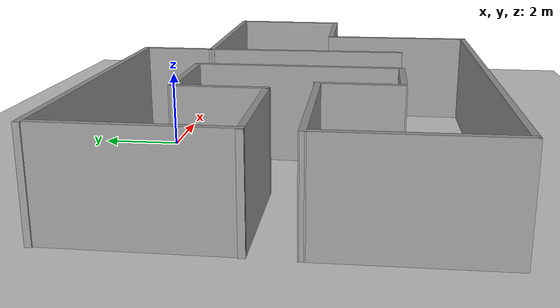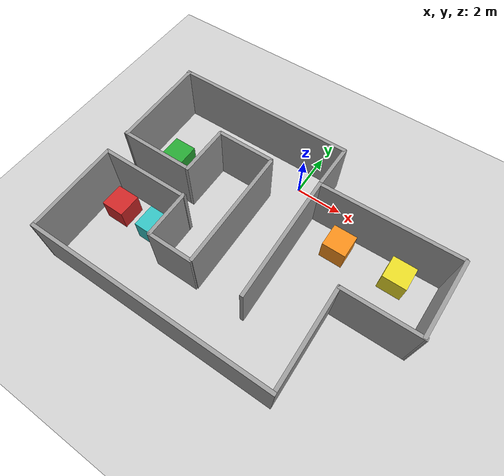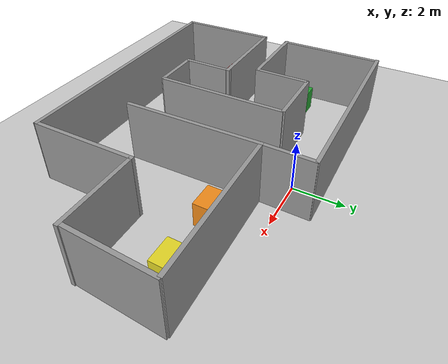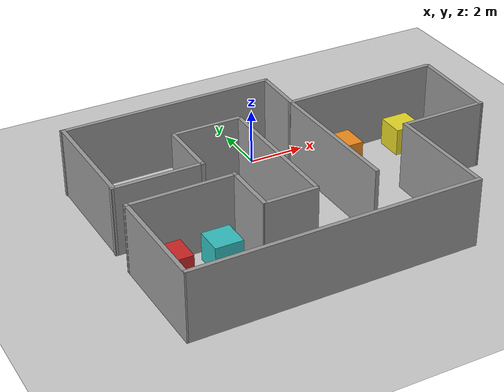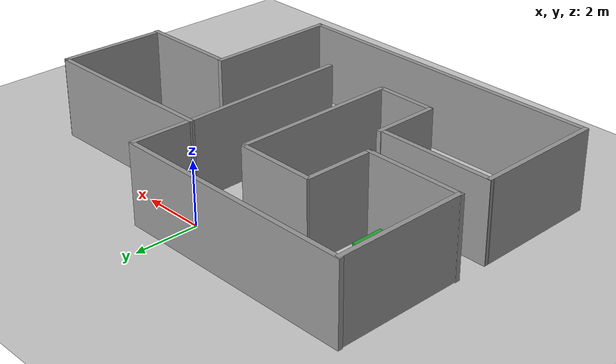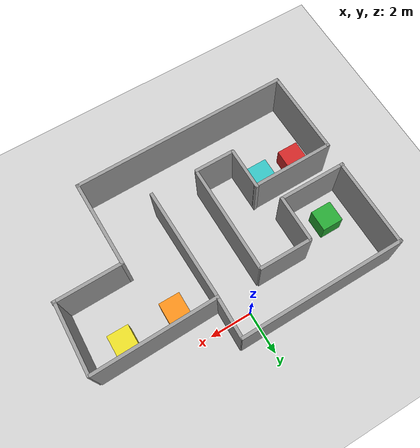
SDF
<sdf version="1.6">
 <world name="default">
  <light name="sun" type="directional">
   <pose>0 0 10 0 -0 0</pose>
   <diffuse>0.8 0.8 0.8 1</diffuse>
   <specular>0.2 0.2 0.2 1</specular>
   <attenuation>
    <range>1000</range>
    <constant>0.9</constant>
    <linear>0.01</linear>
    <quadratic>0.001</quadratic>
   </attenuation>
   <direction>-0.5 0.1 -0.9</direction>
  </light>
  <model name="ground_plane">
   <static>1</static>
   <link name="link">
    <collision name="collision">
     <geometry><plane><normal>0 0 1</normal><size>100 100</size></plane></geometry>
     <surface>
      <contact><collide_bitmask>65535</collide_bitmask></contact>
      <friction><ode><mu>100</mu><mu2>50</mu2></ode></friction>
     </surface>
    </collision>
    <visual name="visual">
     <cast_shadows>0</cast_shadows>
     <geometry><plane><normal>0 0 1</normal><size>100 100</size></plane></geometry>
     <material>
      <script><uri>file://media/materials/scripts/gazebo.material</uri><name>Gazebo/Grey</name></script>
     </material>
    </visual>
   </link>
  </model>
  <gravity>0 0 -9.8</gravity>
  <magnetic_field>6e-06 2.3e-05 -4.2e-05</magnetic_field>
  <atmosphere type="adiabatic"/>
  <physics name="default_physics" default="0" type="ode">
   <max_step_size>0.001</max_step_size>
   <real_time_factor>1</real_time_factor>
   <real_time_update_rate>1000</real_time_update_rate>
  </physics>
  <scene><ambient>0.4 0.4 0.4 1</ambient><background>0.7 0.7 0.7 1</background><shadows>1</shadows></scene>
  <spherical_coordinates>
   <surface_model>EARTH_WGS84</surface_model>
   <latitude_deg>0</latitude_deg>
   <longitude_deg>0</longitude_deg>
   <elevation>0</elevation>
   <heading_deg>0</heading_deg>
  </spherical_coordinates>
  <model name="small_factory">
   <pose>0.167856 -3.55018 0 0 -0 0</pose>
   <link name="Wall_49">
    <collision name="Wall_49_Collision">
     <geometry><box><size>5.42677 0.15 2.5</size></box></geometry>
     <pose>0 0 1.25 0 -0 0</pose>
    </collision>
    <visual name="Wall_49_Visual">
     <pose>0 0 1.25 0 -0 0</pose>
     <geometry><box><size>5.42677 0.15 2.5</size></box></geometry>
     <material>
      <script><uri>file://media/materials/scripts/gazebo.material</uri><name>Gazebo/Grey</name></script>
      <ambient>1 1 1 1</ambient>
     </material>
     <meta><layer>0</layer></meta>
    </visual>
    <pose>1.01352 0.086125 0 0 -0 1.59164</pose>
   </link>
   <link name="Wall_50">
    <collision name="Wall_50_Collision">
     <geometry><box><size>2.026 0.15 2.5</size></box></geometry>
     <pose>0 0 1.25 0 -0 0</pose>
    </collision>
    <visual name="Wall_50_Visual">
     <pose>0 0 1.25 0 -0 0</pose>
     <geometry><box><size>2.026 0.15 2.5</size></box></geometry>
     <material>
      <script><uri>file://media/materials/scripts/gazebo.material</uri><name>Gazebo/Grey</name></script>
      <ambient>1 1 1 1</ambient>
     </material>
     <meta><layer>0</layer></meta>
    </visual>
    <pose>0.969367 3.66152 0 0 -0 1.55926</pose>
   </link>
   <link name="Wall_51">
    <collision name="Wall_51_Collision">
     <geometry><box><size>7.82404 0.15 2.5</size></box></geometry>
     <pose>0 0 1.25 0 -0 0</pose>
    </collision>
    <visual name="Wall_51_Visual">
     <pose>0 0 1.25 0 -0 0</pose>
     <geometry><box><size>7.82404 0.15 2.5</size></box></geometry>
     <material>
      <script><uri>file://media/materials/scripts/gazebo.material</uri><name>Gazebo/Grey</name></script>
      <ambient>1 1 1 1</ambient>
     </material>
     <meta><layer>0</layer></meta>
    </visual>
    <pose>-2.89195 4.61441 0 0 0 -3.13632</pose>
   </link>
   <link name="Wall_52">
    <collision name="Wall_52_Collision">
     <geometry><box><size>4.24698 0.15 2.5</size></box></geometry>
     <pose>0 0 1.25 0 -0 0</pose>
    </collision>
    <visual name="Wall_52_Visual">
     <pose>0 0 1.25 0 -0 0</pose>
     <geometry><box><size>4.24698 0.15 2.5</size></box></geometry>
     <material>
      <script><uri>file://media/materials/scripts/gazebo.material</uri><name>Gazebo/Grey</name></script>
      <ambient>1 1 1 1</ambient>
     </material>
     <meta><layer>0</layer></meta>
    </visual>
    <pose>-6.67186 2.51063 0 0 0 -1.56012</pose>
   </link>
   <link name="Wall_53">
    <collision name="Wall_53_Collision">
     <geometry><box><size>3.25 0.15 2.5</size></box></geometry>
     <pose>0 0 1.25 0 -0 0</pose>
    </collision>
    <visual name="Wall_53_Visual">
     <pose>0 0 1.25 0 -0 0</pose>
     <geometry><box><size>3.25 0.15 2.5</size></box></geometry>
     <material>
      <script><uri>file://media/materials/scripts/gazebo.material</uri><name>Gazebo/Grey</name></script>
      <ambient>1 1 1 1</ambient>
     </material>
     <meta><layer>0</layer></meta>
    </visual>
    <pose>-5.12658 0.462254 0 0 -0 0</pose>
   </link>
   <link name="Wall_56">
    <collision name="Wall_56_Collision">
     <geometry><box><size>2.5 0.15 2.5</size></box></geometry>
     <pose>0 0 1.25 0 -0 0</pose>
    </collision>
    <visual name="Wall_56_Visual">
     <pose>0 0 1.25 0 -0 0</pose>
     <geometry><box><size>2.5 0.15 2.5</size></box></geometry>
     <material>
      <script><uri>file://media/materials/scripts/gazebo.material</uri><name>Gazebo/Grey</name></script>
      <ambient>1 1 1 1</ambient>
     </material>
     <meta><layer>0</layer></meta>
    </visual>
    <pose>-2.36417 2.61026 0 0 -0 0</pose>
   </link>
   <link name="Wall_59">
    <collision name="Wall_59_Collision">
     <geometry><box><size>2.07117 0.15 2.5</size></box></geometry>
     <pose>0 0 1.25 0 -0 0</pose>
    </collision>
    <visual name="Wall_59_Visual">
     <pose>0 0 1.25 0 -0 0</pose>
     <geometry><box><size>2.07117 0.15 2.5</size></box></geometry>
     <material>
      <script><uri>file://media/materials/scripts/gazebo.material</uri><name>Gazebo/Grey</name></script>
      <ambient>1 1 1 1</ambient>
     </material>
     <meta><layer>0</layer></meta>
    </visual>
    <pose>-2.95419 -1.5526 0 0 -0 1.57526</pose>
   </link>
   <link name="Wall_60">
    <collision name="Wall_60_Collision">
     <geometry><box><size>3.8725 0.15 2.5</size></box></geometry>
     <pose>0 0 1.25 0 -0 0</pose>
    </collision>
    <visual name="Wall_60_Visual">
     <pose>0 0 1.25 0 -0 0</pose>
     <geometry><box><size>3.8725 0.15 2.5</size></box></geometry>
     <material>
      <script><uri>file://media/materials/scripts/gazebo.material</uri><name>Gazebo/Grey</name></script>
      <ambient>1 1 1 1</ambient>
     </material>
     <meta><layer>0</layer></meta>
    </visual>
    <pose>-4.81968 -0.63193 0 0 0 -3.13445</pose>
   </link>
   <link name="Wall_61">
    <collision name="Wall_61_Collision">
     <geometry><box><size>4.11251 0.15 2.5</size></box></geometry>
     <pose>0 0 1.25 0 -0 0</pose>
    </collision>
    <visual name="Wall_61_Visual">
     <pose>0 0 1.25 0 -0 0</pose>
     <geometry><box><size>4.11251 0.15 2.5</size></box></geometry>
     <material>
      <script><uri>file://media/materials/scripts/gazebo.material</uri><name>Gazebo/Grey</name></script>
      <ambient>1 1 1 1</ambient>
     </material>
     <meta><layer>0</layer></meta>
    </visual>
    <pose>-6.64358 -2.65273 0 0 0 -1.55197</pose>
   </link>
   <link name="Wall_62">
    <collision name="Wall_62_Collision">
     <geometry><box><size>10.322 0.15 2.5</size></box></geometry>
     <pose>0 0 1.25 0 -0 0</pose>
    </collision>
    <visual name="Wall_62_Visual">
     <pose>0 0 1.25 0 -0 0</pose>
     <geometry><box><size>10.322 0.15 2.5</size></box></geometry>
     <material>
      <script><uri>file://media/materials/scripts/gazebo.material</uri><name>Gazebo/Grey</name></script>
      <ambient>1 1 1 1</ambient>
     </material>
     <meta><layer>0</layer></meta>
    </visual>
    <pose>-1.49396 -4.59846 0 0 -0 0.006917</pose>
   </link>
   <link name="Wall_63">
    <collision name="Wall_63_Collision">
     <geometry><box><size>4.17596 0.15 2.5</size></box></geometry>
     <pose>0 0 1.25 0 -0 0</pose>
    </collision>
    <visual name="Wall_63_Visual">
     <pose>0 0 1.25 0 -0 0</pose>
     <geometry><box><size>4.17596 0.15 2.5</size></box></geometry>
     <material>
      <script><uri>file://media/materials/scripts/gazebo.material</uri><name>Gazebo/Grey</name></script>
      <ambient>1 1 1 1</ambient>
     </material>
     <meta><layer>0</layer></meta>
    </visual>
    <pose>3.57417 -2.51512 0 0 -0 1.57953</pose>
   </link>
   <link name="Wall_64">
    <collision name="Wall_64_Collision">
     <geometry><box><size>3.21502 0.15 2.5</size></box></geometry>
     <pose>0 0 1.25 0 -0 0</pose>
    </collision>
    <visual name="Wall_64_Visual">
     <pose>0 0 1.25 0 -0 0</pose>
     <geometry><box><size>3.21502 0.15 2.5</size></box></geometry>
     <material>
      <script><uri>file://media/materials/scripts/gazebo.material</uri><name>Gazebo/Grey</name></script>
      <ambient>1 1 1 1</ambient>
     </material>
     <meta><layer>0</layer></meta>
    </visual>
    <pose>5.12417 -0.484549 0 0 -0 0.011478</pose>
   </link>
   <link name="Wall_65">
    <collision name="Wall_65_Collision">
     <geometry><box><size>3.41166 0.15 2.5</size></box></geometry>
     <pose>0 0 1.25 0 -0 0</pose>
    </collision>
    <visual name="Wall_65_Visual">
     <pose>0 0 1.25 0 -0 0</pose>
     <geometry><box><size>3.41166 0.15 2.5</size></box></geometry>
     <material>
      <script><uri>file://media/materials/scripts/gazebo.material</uri><name>Gazebo/Grey</name></script>
      <ambient>1 1 1 1</ambient>
     </material>
     <meta><layer>0</layer></meta>
    </visual>
    <pose>6.67417 1.16349 0 0 -0 1.53844</pose>
   </link>
   <link name="Wall_66">
    <collision name="Wall_66_Collision">
     <geometry><box><size>5.84902 0.15 2.5</size></box></geometry>
     <pose>0 0 1.25 0 -0 0</pose>
    </collision>
    <visual name="Wall_66_Visual">
     <pose>0 0 1.25 0 -0 0</pose>
     <geometry><box><size>5.84902 0.15 2.5</size></box></geometry>
     <material>
      <script><uri>file://media/materials/scripts/gazebo.material</uri><name>Gazebo/Grey</name></script>
      <ambient>1 1 1 1</ambient>
     </material>
     <meta><layer>0</layer></meta>
    </visual>
    <pose>3.80756 2.77635 0 0 0 -3.12307</pose>
   </link>
   <link name="Wall_68">
    <collision name="Wall_68_Collision">
     <geometry><box><size>1.92964 0.15 2.5</size></box></geometry>
     <pose>0 0 1.25 0 -0 0</pose>
    </collision>
    <visual name="Wall_68_Visual">
     <pose>0 0 1.25 0 -0 0</pose>
     <geometry><box><size>1.92964 0.15 2.5</size></box></geometry>
     <material>
      <script><uri>file://media/materials/scripts/gazebo.material</uri><name>Gazebo/Grey</name></script>
      <ambient>1 1 1 1</ambient>
     </material>
     <meta><layer>0</layer></meta>
    </visual>
    <pose>-2.0249 -2.54836 0 0 -0 0</pose>
   </link>
   <link name="Wall_69">
    <collision name="Wall_69_Collision">
     <geometry><box><size>5.17227 0.15 2.5</size></box></geometry>
     <pose>0 0 1.25 0 -0 0</pose>
    </collision>
    <visual name="Wall_69_Visual">
     <pose>0 0 1.25 0 -0 0</pose>
     <geometry><box><size>5.17227 0.15 2.5</size></box></geometry>
     <material>
      <script><uri>file://media/materials/scripts/gazebo.material</uri><name>Gazebo/Grey</name></script>
      <ambient>1 1 1 1</ambient>
     </material>
     <meta><layer>0</layer></meta>
    </visual>
    <pose>-1.11749 0.033073 0 0 -0 1.5778</pose>
   </link>
   <link name="Wall_71">
    <collision name="Wall_71_Collision">
     <geometry><box><size>2.25 0.15 2.5</size></box></geometry>
     <pose>0 0 1.25 0 -0 0</pose>
    </collision>
    <visual name="Wall_71_Visual">
     <pose>0 0 1.25 0 -0 0</pose>
     <geometry><box><size>2.25 0.15 2.5</size></box></geometry>
     <material>
      <script><uri>file://media/materials/scripts/gazebo.material</uri><name>Gazebo/Grey</name></script>
      <ambient>1 1 1 1</ambient>
     </material>
     <meta><layer>0</layer></meta>
    </visual>
    <pose>-3.57658 1.51225 0 0 -0 1.5708</pose>
   </link>
   <static>1</static>
  </model>
  <model name="unit_box">
   <pose>-5.47072 -5.1256 0.499995 1e-05 -0 0</pose>
   <link name="link">
    <inertial>
     <mass>1</mass>
     <inertia>
      <ixx>0.166667</ixx>
      <ixy>0</ixy>
      <ixz>0</ixz>
      <iyy>0.166667</iyy>
      <iyz>0</iyz>
      <izz>0.166667</izz>
     </inertia>
    </inertial>
    <collision name="collision"><geometry><box><size>1 1 1</size></box></geometry></collision>
    <visual name="visual">
     <geometry><box><size>1 1 1</size></box></geometry>
     <material>
      <script><name>Gazebo/Red</name><uri>file://media/materials/scripts/gazebo.material</uri></script>
     </material>
    </visual>
   </link>
  </model>
  <model name="unit_box_0">
   <pose>-3.75984 -5.12929 0.499995 1e-05 -0 0</pose>
   <link name="link">
    <inertial>
     <mass>1</mass>
     <inertia>
      <ixx>0.166667</ixx>
      <ixy>0</ixy>
      <ixz>0</ixz>
      <iyy>0.166667</iyy>
      <iyz>0</iyz>
      <izz>0.166667</izz>
     </inertia>
    </inertial>
    <collision name="collision"><geometry><box><size>1 1 1</size></box></geometry></collision>
    <visual name="visual">
     <geometry><box><size>1 1 1</size></box></geometry>
     <material>
      <script><name>Gazebo/Turquoise</name><uri>file://media/materials/scripts/gazebo.material</uri></script>
     </material>
    </visual>
   </link>
  </model>
  <model name="unit_box_1">
   <pose>-5.1078 -1.81877 0.499995 0 1e-05 0</pose>
   <link name="link">
    <inertial>
     <mass>1</mass>
     <inertia>
      <ixx>0.166667</ixx>
      <ixy>0</ixy>
      <ixz>0</ixz>
      <iyy>0.166667</iyy>
      <iyz>0</iyz>
      <izz>0.166667</izz>
     </inertia>
    </inertial>
    <collision name="collision"><geometry><box><size>1 1 1</size></box></geometry></collision>
    <visual name="visual">
     <geometry><box><size>1 1 1</size></box></geometry>
     <material>
      <script><name>Gazebo/Green</name><uri>file://media/materials/scripts/gazebo.material</uri></script>
     </material>
    </visual>
   </link>
  </model>
  <model name="unit_box_2">
   <pose>5.25588 -1.60708 0.499995 -1e-05 0 0</pose>
   <link name="link">
    <inertial>
     <mass>1</mass>
     <inertia>
      <ixx>0.166667</ixx>
      <ixy>0</ixy>
      <ixz>0</ixz>
      <iyy>0.166667</iyy>
      <iyz>0</iyz>
      <izz>0.166667</izz>
     </inertia>
    </inertial>
    <collision name="collision"><geometry><box><size>1 1 1</size></box></geometry></collision>
    <visual name="visual">
     <geometry><box><size>1 1 1</size></box></geometry>
     <material>
      <script><name>Gazebo/Yellow</name><uri>file://media/materials/scripts/gazebo.material</uri></script>
     </material>
    </visual>
   </link>
  </model>
  <model name="unit_box_3">
   <pose>2.75441 -1.69536 0.499995 0 1e-05 0</pose>
   <link name="link">
    <inertial>
     <mass>1</mass>
     <inertia>
      <ixx>0.166667</ixx>
      <ixy>0</ixy>
      <ixz>0</ixz>
      <iyy>0.166667</iyy>
      <iyz>0</iyz>
      <izz>0.166667</izz>
     </inertia>
    </inertial>
    <collision name="collision"><geometry><box><size>1 1 1</size></box></geometry></collision>
    <visual name="visual">
     <geometry><box><size>1 1 1</size></box></geometry>
     <material>
      <script><name>Gazebo/Orange</name><uri>file://media/materials/scripts/gazebo.material</uri></script>
     </material>
    </visual>
   </link>
  </model>
 </world>
</sdf>
